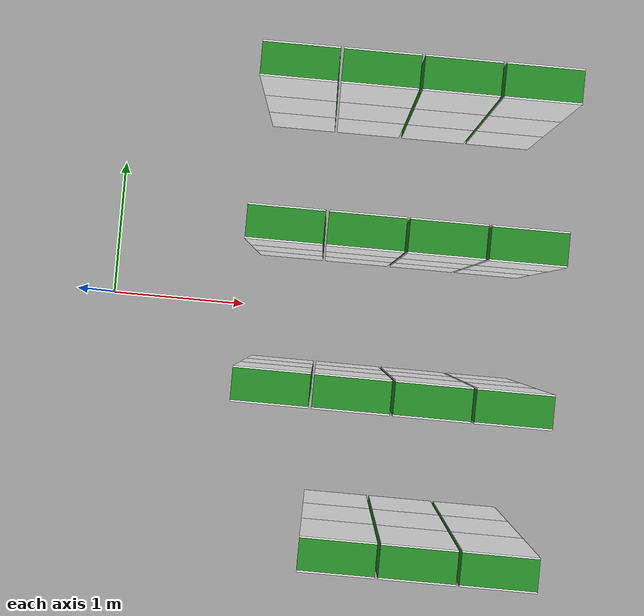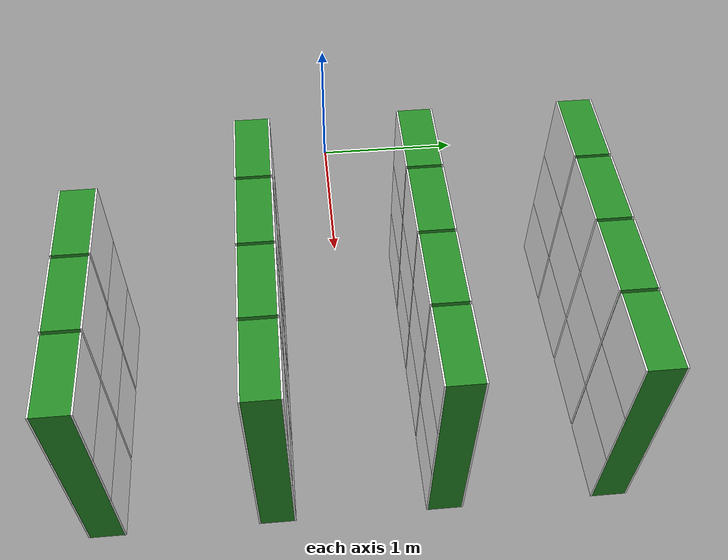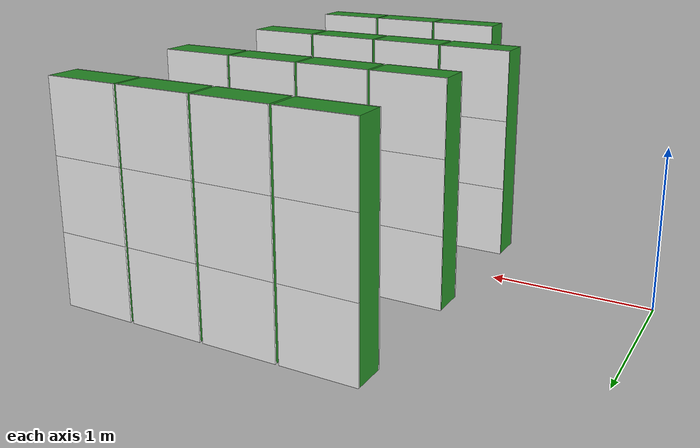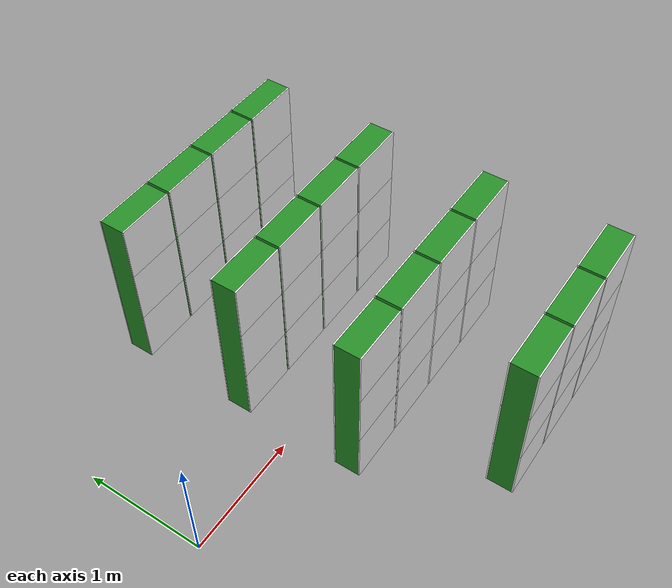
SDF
<sdf version="1.6">
 <world name="greenhouse_world">
  <model name="tomato_r0_p2">
   <static>true</static>
   <pose>1.840 -1.500 0 0 0 0</pose>
   <link name="link">
    <collision name="foliage_col">
     <pose>0 0 0.700 0 0 0</pose>
     <geometry><box><size>0.480 0.200 1.400</size></box></geometry>
    </collision>
    <visual name="foliage_core">
     <pose>0 0 0.700 0 0 0</pose>
     <geometry><box><size>0.480 0.200 1.400</size></box></geometry>
     <material><ambient>0.1 0.4 0.1 1</ambient><diffuse>0.15 0.55 0.15 1</diffuse></material>
    </visual>
    <visual name="foliage_panel_py_0">
     <pose>0 0.105 0.233 0 0 0</pose>
     <geometry><box><size>0.480 0.010 0.467</size></box></geometry>
     <material>
      <diffuse>1 1 1 1</diffuse>
      <specular>0 0 0 1</specular>
      <pbr>
       <metal>
        <albedo_map>../media/materials/textures/img17.jpg</albedo_map>
        <metalness>0.0</metalness>
        <roughness>1.0</roughness>
       </metal>
      </pbr>
     </material>
    </visual>
    <visual name="foliage_panel_py_1">
     <pose>0 0.105 0.700 0 0 0</pose>
     <geometry><box><size>0.480 0.010 0.467</size></box></geometry>
     <material>
      <diffuse>1 1 1 1</diffuse>
      <specular>0 0 0 1</specular>
      <pbr>
       <metal>
        <albedo_map>../media/materials/textures/img05.jpg</albedo_map>
        <metalness>0.0</metalness>
        <roughness>1.0</roughness>
       </metal>
      </pbr>
     </material>
    </visual>
    <visual name="foliage_panel_py_2">
     <pose>0 0.105 1.167 0 0 0</pose>
     <geometry><box><size>0.480 0.010 0.467</size></box></geometry>
     <material>
      <diffuse>1 1 1 1</diffuse>
      <specular>0 0 0 1</specular>
      <pbr>
       <metal>
        <albedo_map>../media/materials/textures/img10.jpg</albedo_map>
        <metalness>0.0</metalness>
        <roughness>1.0</roughness>
       </metal>
      </pbr>
     </material>
    </visual>
    <visual name="foliage_panel_ny_0">
     <pose>0 -0.105 0.233 0 3.14159 0</pose>
     <geometry><box><size>0.480 0.010 0.467</size></box></geometry>
     <material>
      <diffuse>1 1 1 1</diffuse>
      <specular>0 0 0 1</specular>
      <pbr>
       <metal>
        <albedo_map>../media/materials/textures/img05.jpg</albedo_map>
        <metalness>0.0</metalness>
        <roughness>1.0</roughness>
       </metal>
      </pbr>
     </material>
    </visual>
    <visual name="foliage_panel_ny_1">
     <pose>0 -0.105 0.700 0 3.14159 0</pose>
     <geometry><box><size>0.480 0.010 0.467</size></box></geometry>
     <material>
      <diffuse>1 1 1 1</diffuse>
      <specular>0 0 0 1</specular>
      <pbr>
       <metal>
        <albedo_map>../media/materials/textures/img04.jpg</albedo_map>
        <metalness>0.0</metalness>
        <roughness>1.0</roughness>
       </metal>
      </pbr>
     </material>
    </visual>
    <visual name="foliage_panel_ny_2">
     <pose>0 -0.105 1.167 0 3.14159 0</pose>
     <geometry><box><size>0.480 0.010 0.467</size></box></geometry>
     <material>
      <diffuse>1 1 1 1</diffuse>
      <specular>0 0 0 1</specular>
      <pbr>
       <metal>
        <albedo_map>../media/materials/textures/img20.jpg</albedo_map>
        <metalness>0.0</metalness>
        <roughness>1.0</roughness>
       </metal>
      </pbr>
     </material>
    </visual>
   </link>
  </model>
  <model name="tomato_r0_p3">
   <static>true</static>
   <pose>2.340 -1.500 0 0 0 0</pose>
   <link name="link">
    <collision name="foliage_col">
     <pose>0 0 0.700 0 0 0</pose>
     <geometry><box><size>0.480 0.200 1.400</size></box></geometry>
    </collision>
    <visual name="foliage_core">
     <pose>0 0 0.700 0 0 0</pose>
     <geometry><box><size>0.480 0.200 1.400</size></box></geometry>
     <material><ambient>0.1 0.4 0.1 1</ambient><diffuse>0.15 0.55 0.15 1</diffuse></material>
    </visual>
    <visual name="foliage_panel_py_0">
     <pose>0 0.105 0.233 0 0 0</pose>
     <geometry><box><size>0.480 0.010 0.467</size></box></geometry>
     <material>
      <diffuse>1 1 1 1</diffuse>
      <specular>0 0 0 1</specular>
      <pbr>
       <metal>
        <albedo_map>../media/materials/textures/img09.jpg</albedo_map>
        <metalness>0.0</metalness>
        <roughness>1.0</roughness>
       </metal>
      </pbr>
     </material>
    </visual>
    <visual name="foliage_panel_py_1">
     <pose>0 0.105 0.700 0 0 0</pose>
     <geometry><box><size>0.480 0.010 0.467</size></box></geometry>
     <material>
      <diffuse>1 1 1 1</diffuse>
      <specular>0 0 0 1</specular>
      <pbr>
       <metal>
        <albedo_map>../media/materials/textures/img18.jpg</albedo_map>
        <metalness>0.0</metalness>
        <roughness>1.0</roughness>
       </metal>
      </pbr>
     </material>
    </visual>
    <visual name="foliage_panel_py_2">
     <pose>0 0.105 1.167 0 0 0</pose>
     <geometry><box><size>0.480 0.010 0.467</size></box></geometry>
     <material>
      <diffuse>1 1 1 1</diffuse>
      <specular>0 0 0 1</specular>
      <pbr>
       <metal>
        <albedo_map>../media/materials/textures/img23.jpg</albedo_map>
        <metalness>0.0</metalness>
        <roughness>1.0</roughness>
       </metal>
      </pbr>
     </material>
    </visual>
    <visual name="foliage_panel_ny_0">
     <pose>0 -0.105 0.233 0 3.14159 0</pose>
     <geometry><box><size>0.480 0.010 0.467</size></box></geometry>
     <material>
      <diffuse>1 1 1 1</diffuse>
      <specular>0 0 0 1</specular>
      <pbr>
       <metal>
        <albedo_map>../media/materials/textures/img20.jpg</albedo_map>
        <metalness>0.0</metalness>
        <roughness>1.0</roughness>
       </metal>
      </pbr>
     </material>
    </visual>
    <visual name="foliage_panel_ny_1">
     <pose>0 -0.105 0.700 0 3.14159 0</pose>
     <geometry><box><size>0.480 0.010 0.467</size></box></geometry>
     <material>
      <diffuse>1 1 1 1</diffuse>
      <specular>0 0 0 1</specular>
      <pbr>
       <metal>
        <albedo_map>../media/materials/textures/img05.jpg</albedo_map>
        <metalness>0.0</metalness>
        <roughness>1.0</roughness>
       </metal>
      </pbr>
     </material>
    </visual>
    <visual name="foliage_panel_ny_2">
     <pose>0 -0.105 1.167 0 3.14159 0</pose>
     <geometry><box><size>0.480 0.010 0.467</size></box></geometry>
     <material>
      <diffuse>1 1 1 1</diffuse>
      <specular>0 0 0 1</specular>
      <pbr>
       <metal>
        <albedo_map>../media/materials/textures/img10.jpg</albedo_map>
        <metalness>0.0</metalness>
        <roughness>1.0</roughness>
       </metal>
      </pbr>
     </material>
    </visual>
   </link>
  </model>
  <model name="tomato_r0_p4">
   <static>true</static>
   <pose>2.840 -1.500 0 0 0 0</pose>
   <link name="link">
    <collision name="foliage_col">
     <pose>0 0 0.700 0 0 0</pose>
     <geometry><box><size>0.480 0.200 1.400</size></box></geometry>
    </collision>
    <visual name="foliage_core">
     <pose>0 0 0.700 0 0 0</pose>
     <geometry><box><size>0.480 0.200 1.400</size></box></geometry>
     <material><ambient>0.1 0.4 0.1 1</ambient><diffuse>0.15 0.55 0.15 1</diffuse></material>
    </visual>
    <visual name="foliage_panel_py_0">
     <pose>0 0.105 0.233 0 0 0</pose>
     <geometry><box><size>0.480 0.010 0.467</size></box></geometry>
     <material>
      <diffuse>1 1 1 1</diffuse>
      <specular>0 0 0 1</specular>
      <pbr>
       <metal>
        <albedo_map>../media/materials/textures/img04.jpg</albedo_map>
        <metalness>0.0</metalness>
        <roughness>1.0</roughness>
       </metal>
      </pbr>
     </material>
    </visual>
    <visual name="foliage_panel_py_1">
     <pose>0 0.105 0.700 0 0 0</pose>
     <geometry><box><size>0.480 0.010 0.467</size></box></geometry>
     <material>
      <diffuse>1 1 1 1</diffuse>
      <specular>0 0 0 1</specular>
      <pbr>
       <metal>
        <albedo_map>../media/materials/textures/img24.jpg</albedo_map>
        <metalness>0.0</metalness>
        <roughness>1.0</roughness>
       </metal>
      </pbr>
     </material>
    </visual>
    <visual name="foliage_panel_py_2">
     <pose>0 0.105 1.167 0 0 0</pose>
     <geometry><box><size>0.480 0.010 0.467</size></box></geometry>
     <material>
      <diffuse>1 1 1 1</diffuse>
      <specular>0 0 0 1</specular>
      <pbr>
       <metal>
        <albedo_map>../media/materials/textures/img03.jpg</albedo_map>
        <metalness>0.0</metalness>
        <roughness>1.0</roughness>
       </metal>
      </pbr>
     </material>
    </visual>
    <visual name="foliage_panel_ny_0">
     <pose>0 -0.105 0.233 0 3.14159 0</pose>
     <geometry><box><size>0.480 0.010 0.467</size></box></geometry>
     <material>
      <diffuse>1 1 1 1</diffuse>
      <specular>0 0 0 1</specular>
      <pbr>
       <metal>
        <albedo_map>../media/materials/textures/img22.jpg</albedo_map>
        <metalness>0.0</metalness>
        <roughness>1.0</roughness>
       </metal>
      </pbr>
     </material>
    </visual>
    <visual name="foliage_panel_ny_1">
     <pose>0 -0.105 0.700 0 3.14159 0</pose>
     <geometry><box><size>0.480 0.010 0.467</size></box></geometry>
     <material>
      <diffuse>1 1 1 1</diffuse>
      <specular>0 0 0 1</specular>
      <pbr>
       <metal>
        <albedo_map>../media/materials/textures/img11.jpg</albedo_map>
        <metalness>0.0</metalness>
        <roughness>1.0</roughness>
       </metal>
      </pbr>
     </material>
    </visual>
    <visual name="foliage_panel_ny_2">
     <pose>0 -0.105 1.167 0 3.14159 0</pose>
     <geometry><box><size>0.480 0.010 0.467</size></box></geometry>
     <material>
      <diffuse>1 1 1 1</diffuse>
      <specular>0 0 0 1</specular>
      <pbr>
       <metal>
        <albedo_map>../media/materials/textures/img16.jpg</albedo_map>
        <metalness>0.0</metalness>
        <roughness>1.0</roughness>
       </metal>
      </pbr>
     </material>
    </visual>
   </link>
  </model>
  <model name="tomato_r1_p1">
   <static>true</static>
   <pose>1.340 -0.500 0 0 0 0</pose>
   <link name="link">
    <collision name="foliage_col">
     <pose>0 0 0.700 0 0 0</pose>
     <geometry><box><size>0.480 0.200 1.400</size></box></geometry>
    </collision>
    <visual name="foliage_core">
     <pose>0 0 0.700 0 0 0</pose>
     <geometry><box><size>0.480 0.200 1.400</size></box></geometry>
     <material><ambient>0.1 0.4 0.1 1</ambient><diffuse>0.15 0.55 0.15 1</diffuse></material>
    </visual>
    <visual name="foliage_panel_py_0">
     <pose>0 0.105 0.233 0 0 0</pose>
     <geometry><box><size>0.480 0.010 0.467</size></box></geometry>
     <material>
      <diffuse>1 1 1 1</diffuse>
      <specular>0 0 0 1</specular>
      <pbr>
       <metal>
        <albedo_map>../media/materials/textures/img04.jpg</albedo_map>
        <metalness>0.0</metalness>
        <roughness>1.0</roughness>
       </metal>
      </pbr>
     </material>
    </visual>
    <visual name="foliage_panel_py_1">
     <pose>0 0.105 0.700 0 0 0</pose>
     <geometry><box><size>0.480 0.010 0.467</size></box></geometry>
     <material>
      <diffuse>1 1 1 1</diffuse>
      <specular>0 0 0 1</specular>
      <pbr>
       <metal>
        <albedo_map>../media/materials/textures/img18.jpg</albedo_map>
        <metalness>0.0</metalness>
        <roughness>1.0</roughness>
       </metal>
      </pbr>
     </material>
    </visual>
    <visual name="foliage_panel_py_2">
     <pose>0 0.105 1.167 0 0 0</pose>
     <geometry><box><size>0.480 0.010 0.467</size></box></geometry>
     <material>
      <diffuse>1 1 1 1</diffuse>
      <specular>0 0 0 1</specular>
      <pbr>
       <metal>
        <albedo_map>../media/materials/textures/img11.jpg</albedo_map>
        <metalness>0.0</metalness>
        <roughness>1.0</roughness>
       </metal>
      </pbr>
     </material>
    </visual>
    <visual name="foliage_panel_ny_0">
     <pose>0 -0.105 0.233 0 3.14159 0</pose>
     <geometry><box><size>0.480 0.010 0.467</size></box></geometry>
     <material>
      <diffuse>1 1 1 1</diffuse>
      <specular>0 0 0 1</specular>
      <pbr>
       <metal>
        <albedo_map>../media/materials/textures/img18.jpg</albedo_map>
        <metalness>0.0</metalness>
        <roughness>1.0</roughness>
       </metal>
      </pbr>
     </material>
    </visual>
    <visual name="foliage_panel_ny_1">
     <pose>0 -0.105 0.700 0 3.14159 0</pose>
     <geometry><box><size>0.480 0.010 0.467</size></box></geometry>
     <material>
      <diffuse>1 1 1 1</diffuse>
      <specular>0 0 0 1</specular>
      <pbr>
       <metal>
        <albedo_map>../media/materials/textures/img07.jpg</albedo_map>
        <metalness>0.0</metalness>
        <roughness>1.0</roughness>
       </metal>
      </pbr>
     </material>
    </visual>
    <visual name="foliage_panel_ny_2">
     <pose>0 -0.105 1.167 0 3.14159 0</pose>
     <geometry><box><size>0.480 0.010 0.467</size></box></geometry>
     <material>
      <diffuse>1 1 1 1</diffuse>
      <specular>0 0 0 1</specular>
      <pbr>
       <metal>
        <albedo_map>../media/materials/textures/img20.jpg</albedo_map>
        <metalness>0.0</metalness>
        <roughness>1.0</roughness>
       </metal>
      </pbr>
     </material>
    </visual>
   </link>
  </model>
  <model name="tomato_r1_p2">
   <static>true</static>
   <pose>1.840 -0.500 0 0 0 0</pose>
   <link name="link">
    <collision name="foliage_col">
     <pose>0 0 0.700 0 0 0</pose>
     <geometry><box><size>0.480 0.200 1.400</size></box></geometry>
    </collision>
    <visual name="foliage_core">
     <pose>0 0 0.700 0 0 0</pose>
     <geometry><box><size>0.480 0.200 1.400</size></box></geometry>
     <material><ambient>0.1 0.4 0.1 1</ambient><diffuse>0.15 0.55 0.15 1</diffuse></material>
    </visual>
    <visual name="foliage_panel_py_0">
     <pose>0 0.105 0.233 0 0 0</pose>
     <geometry><box><size>0.480 0.010 0.467</size></box></geometry>
     <material>
      <diffuse>1 1 1 1</diffuse>
      <specular>0 0 0 1</specular>
      <pbr>
       <metal>
        <albedo_map>../media/materials/textures/img18.jpg</albedo_map>
        <metalness>0.0</metalness>
        <roughness>1.0</roughness>
       </metal>
      </pbr>
     </material>
    </visual>
    <visual name="foliage_panel_py_1">
     <pose>0 0.105 0.700 0 0 0</pose>
     <geometry><box><size>0.480 0.010 0.467</size></box></geometry>
     <material>
      <diffuse>1 1 1 1</diffuse>
      <specular>0 0 0 1</specular>
      <pbr>
       <metal>
        <albedo_map>../media/materials/textures/img19.jpg</albedo_map>
        <metalness>0.0</metalness>
        <roughness>1.0</roughness>
       </metal>
      </pbr>
     </material>
    </visual>
    <visual name="foliage_panel_py_2">
     <pose>0 0.105 1.167 0 0 0</pose>
     <geometry><box><size>0.480 0.010 0.467</size></box></geometry>
     <material>
      <diffuse>1 1 1 1</diffuse>
      <specular>0 0 0 1</specular>
      <pbr>
       <metal>
        <albedo_map>../media/materials/textures/img10.jpg</albedo_map>
        <metalness>0.0</metalness>
        <roughness>1.0</roughness>
       </metal>
      </pbr>
     </material>
    </visual>
    <visual name="foliage_panel_ny_0">
     <pose>0 -0.105 0.233 0 3.14159 0</pose>
     <geometry><box><size>0.480 0.010 0.467</size></box></geometry>
     <material>
      <diffuse>1 1 1 1</diffuse>
      <specular>0 0 0 1</specular>
      <pbr>
       <metal>
        <albedo_map>../media/materials/textures/img15.jpg</albedo_map>
        <metalness>0.0</metalness>
        <roughness>1.0</roughness>
       </metal>
      </pbr>
     </material>
    </visual>
    <visual name="foliage_panel_ny_1">
     <pose>0 -0.105 0.700 0 3.14159 0</pose>
     <geometry><box><size>0.480 0.010 0.467</size></box></geometry>
     <material>
      <diffuse>1 1 1 1</diffuse>
      <specular>0 0 0 1</specular>
      <pbr>
       <metal>
        <albedo_map>../media/materials/textures/img03.jpg</albedo_map>
        <metalness>0.0</metalness>
        <roughness>1.0</roughness>
       </metal>
      </pbr>
     </material>
    </visual>
    <visual name="foliage_panel_ny_2">
     <pose>0 -0.105 1.167 0 3.14159 0</pose>
     <geometry><box><size>0.480 0.010 0.467</size></box></geometry>
     <material>
      <diffuse>1 1 1 1</diffuse>
      <specular>0 0 0 1</specular>
      <pbr>
       <metal>
        <albedo_map>../media/materials/textures/img20.jpg</albedo_map>
        <metalness>0.0</metalness>
        <roughness>1.0</roughness>
       </metal>
      </pbr>
     </material>
    </visual>
   </link>
  </model>
  <model name="tomato_r1_p3">
   <static>true</static>
   <pose>2.340 -0.500 0 0 0 0</pose>
   <link name="link">
    <collision name="foliage_col">
     <pose>0 0 0.700 0 0 0</pose>
     <geometry><box><size>0.480 0.200 1.400</size></box></geometry>
    </collision>
    <visual name="foliage_core">
     <pose>0 0 0.700 0 0 0</pose>
     <geometry><box><size>0.480 0.200 1.400</size></box></geometry>
     <material><ambient>0.1 0.4 0.1 1</ambient><diffuse>0.15 0.55 0.15 1</diffuse></material>
    </visual>
    <visual name="foliage_panel_py_0">
     <pose>0 0.105 0.233 0 0 0</pose>
     <geometry><box><size>0.480 0.010 0.467</size></box></geometry>
     <material>
      <diffuse>1 1 1 1</diffuse>
      <specular>0 0 0 1</specular>
      <pbr>
       <metal>
        <albedo_map>../media/materials/textures/img13.jpg</albedo_map>
        <metalness>0.0</metalness>
        <roughness>1.0</roughness>
       </metal>
      </pbr>
     </material>
    </visual>
    <visual name="foliage_panel_py_1">
     <pose>0 0.105 0.700 0 0 0</pose>
     <geometry><box><size>0.480 0.010 0.467</size></box></geometry>
     <material>
      <diffuse>1 1 1 1</diffuse>
      <specular>0 0 0 1</specular>
      <pbr>
       <metal>
        <albedo_map>../media/materials/textures/img11.jpg</albedo_map>
        <metalness>0.0</metalness>
        <roughness>1.0</roughness>
       </metal>
      </pbr>
     </material>
    </visual>
    <visual name="foliage_panel_py_2">
     <pose>0 0.105 1.167 0 0 0</pose>
     <geometry><box><size>0.480 0.010 0.467</size></box></geometry>
     <material>
      <diffuse>1 1 1 1</diffuse>
      <specular>0 0 0 1</specular>
      <pbr>
       <metal>
        <albedo_map>../media/materials/textures/img19.jpg</albedo_map>
        <metalness>0.0</metalness>
        <roughness>1.0</roughness>
       </metal>
      </pbr>
     </material>
    </visual>
    <visual name="foliage_panel_ny_0">
     <pose>0 -0.105 0.233 0 3.14159 0</pose>
     <geometry><box><size>0.480 0.010 0.467</size></box></geometry>
     <material>
      <diffuse>1 1 1 1</diffuse>
      <specular>0 0 0 1</specular>
      <pbr>
       <metal>
        <albedo_map>../media/materials/textures/img08.jpg</albedo_map>
        <metalness>0.0</metalness>
        <roughness>1.0</roughness>
       </metal>
      </pbr>
     </material>
    </visual>
    <visual name="foliage_panel_ny_1">
     <pose>0 -0.105 0.700 0 3.14159 0</pose>
     <geometry><box><size>0.480 0.010 0.467</size></box></geometry>
     <material>
      <diffuse>1 1 1 1</diffuse>
      <specular>0 0 0 1</specular>
      <pbr>
       <metal>
        <albedo_map>../media/materials/textures/img10.jpg</albedo_map>
        <metalness>0.0</metalness>
        <roughness>1.0</roughness>
       </metal>
      </pbr>
     </material>
    </visual>
    <visual name="foliage_panel_ny_2">
     <pose>0 -0.105 1.167 0 3.14159 0</pose>
     <geometry><box><size>0.480 0.010 0.467</size></box></geometry>
     <material>
      <diffuse>1 1 1 1</diffuse>
      <specular>0 0 0 1</specular>
      <pbr>
       <metal>
        <albedo_map>../media/materials/textures/img06.jpg</albedo_map>
        <metalness>0.0</metalness>
        <roughness>1.0</roughness>
       </metal>
      </pbr>
     </material>
    </visual>
   </link>
  </model>
  <model name="tomato_r1_p4">
   <static>true</static>
   <pose>2.840 -0.500 0 0 0 0</pose>
   <link name="link">
    <collision name="foliage_col">
     <pose>0 0 0.700 0 0 0</pose>
     <geometry><box><size>0.480 0.200 1.400</size></box></geometry>
    </collision>
    <visual name="foliage_core">
     <pose>0 0 0.700 0 0 0</pose>
     <geometry><box><size>0.480 0.200 1.400</size></box></geometry>
     <material><ambient>0.1 0.4 0.1 1</ambient><diffuse>0.15 0.55 0.15 1</diffuse></material>
    </visual>
    <visual name="foliage_panel_py_0">
     <pose>0 0.105 0.233 0 0 0</pose>
     <geometry><box><size>0.480 0.010 0.467</size></box></geometry>
     <material>
      <diffuse>1 1 1 1</diffuse>
      <specular>0 0 0 1</specular>
      <pbr>
       <metal>
        <albedo_map>../media/materials/textures/img07.jpg</albedo_map>
        <metalness>0.0</metalness>
        <roughness>1.0</roughness>
       </metal>
      </pbr>
     </material>
    </visual>
    <visual name="foliage_panel_py_1">
     <pose>0 0.105 0.700 0 0 0</pose>
     <geometry><box><size>0.480 0.010 0.467</size></box></geometry>
     <material>
      <diffuse>1 1 1 1</diffuse>
      <specular>0 0 0 1</specular>
      <pbr>
       <metal>
        <albedo_map>../media/materials/textures/img06.jpg</albedo_map>
        <metalness>0.0</metalness>
        <roughness>1.0</roughness>
       </metal>
      </pbr>
     </material>
    </visual>
    <visual name="foliage_panel_py_2">
     <pose>0 0.105 1.167 0 0 0</pose>
     <geometry><box><size>0.480 0.010 0.467</size></box></geometry>
     <material>
      <diffuse>1 1 1 1</diffuse>
      <specular>0 0 0 1</specular>
      <pbr>
       <metal>
        <albedo_map>../media/materials/textures/img02.jpg</albedo_map>
        <metalness>0.0</metalness>
        <roughness>1.0</roughness>
       </metal>
      </pbr>
     </material>
    </visual>
    <visual name="foliage_panel_ny_0">
     <pose>0 -0.105 0.233 0 3.14159 0</pose>
     <geometry><box><size>0.480 0.010 0.467</size></box></geometry>
     <material>
      <diffuse>1 1 1 1</diffuse>
      <specular>0 0 0 1</specular>
      <pbr>
       <metal>
        <albedo_map>../media/materials/textures/img20.jpg</albedo_map>
        <metalness>0.0</metalness>
        <roughness>1.0</roughness>
       </metal>
      </pbr>
     </material>
    </visual>
    <visual name="foliage_panel_ny_1">
     <pose>0 -0.105 0.700 0 3.14159 0</pose>
     <geometry><box><size>0.480 0.010 0.467</size></box></geometry>
     <material>
      <diffuse>1 1 1 1</diffuse>
      <specular>0 0 0 1</specular>
      <pbr>
       <metal>
        <albedo_map>../media/materials/textures/img22.jpg</albedo_map>
        <metalness>0.0</metalness>
        <roughness>1.0</roughness>
       </metal>
      </pbr>
     </material>
    </visual>
    <visual name="foliage_panel_ny_2">
     <pose>0 -0.105 1.167 0 3.14159 0</pose>
     <geometry><box><size>0.480 0.010 0.467</size></box></geometry>
     <material>
      <diffuse>1 1 1 1</diffuse>
      <specular>0 0 0 1</specular>
      <pbr>
       <metal>
        <albedo_map>../media/materials/textures/img09.jpg</albedo_map>
        <metalness>0.0</metalness>
        <roughness>1.0</roughness>
       </metal>
      </pbr>
     </material>
    </visual>
   </link>
  </model>
  <model name="tomato_r2_p1">
   <static>true</static>
   <pose>1.340 0.500 0 0 0 0</pose>
   <link name="link">
    <collision name="foliage_col">
     <pose>0 0 0.700 0 0 0</pose>
     <geometry><box><size>0.480 0.200 1.400</size></box></geometry>
    </collision>
    <visual name="foliage_core">
     <pose>0 0 0.700 0 0 0</pose>
     <geometry><box><size>0.480 0.200 1.400</size></box></geometry>
     <material><ambient>0.1 0.4 0.1 1</ambient><diffuse>0.15 0.55 0.15 1</diffuse></material>
    </visual>
    <visual name="foliage_panel_py_0">
     <pose>0 0.105 0.233 0 0 0</pose>
     <geometry><box><size>0.480 0.010 0.467</size></box></geometry>
     <material>
      <diffuse>1 1 1 1</diffuse>
      <specular>0 0 0 1</specular>
      <pbr>
       <metal>
        <albedo_map>../media/materials/textures/img14.jpg</albedo_map>
        <metalness>0.0</metalness>
        <roughness>1.0</roughness>
       </metal>
      </pbr>
     </material>
    </visual>
    <visual name="foliage_panel_py_1">
     <pose>0 0.105 0.700 0 0 0</pose>
     <geometry><box><size>0.480 0.010 0.467</size></box></geometry>
     <material>
      <diffuse>1 1 1 1</diffuse>
      <specular>0 0 0 1</specular>
      <pbr>
       <metal>
        <albedo_map>../media/materials/textures/img02.jpg</albedo_map>
        <metalness>0.0</metalness>
        <roughness>1.0</roughness>
       </metal>
      </pbr>
     </material>
    </visual>
    <visual name="foliage_panel_py_2">
     <pose>0 0.105 1.167 0 0 0</pose>
     <geometry><box><size>0.480 0.010 0.467</size></box></geometry>
     <material>
      <diffuse>1 1 1 1</diffuse>
      <specular>0 0 0 1</specular>
      <pbr>
       <metal>
        <albedo_map>../media/materials/textures/img04.jpg</albedo_map>
        <metalness>0.0</metalness>
        <roughness>1.0</roughness>
       </metal>
      </pbr>
     </material>
    </visual>
    <visual name="foliage_panel_ny_0">
     <pose>0 -0.105 0.233 0 3.14159 0</pose>
     <geometry><box><size>0.480 0.010 0.467</size></box></geometry>
     <material>
      <diffuse>1 1 1 1</diffuse>
      <specular>0 0 0 1</specular>
      <pbr>
       <metal>
        <albedo_map>../media/materials/textures/img05.jpg</albedo_map>
        <metalness>0.0</metalness>
        <roughness>1.0</roughness>
       </metal>
      </pbr>
     </material>
    </visual>
    <visual name="foliage_panel_ny_1">
     <pose>0 -0.105 0.700 0 3.14159 0</pose>
     <geometry><box><size>0.480 0.010 0.467</size></box></geometry>
     <material>
      <diffuse>1 1 1 1</diffuse>
      <specular>0 0 0 1</specular>
      <pbr>
       <metal>
        <albedo_map>../media/materials/textures/img23.jpg</albedo_map>
        <metalness>0.0</metalness>
        <roughness>1.0</roughness>
       </metal>
      </pbr>
     </material>
    </visual>
    <visual name="foliage_panel_ny_2">
     <pose>0 -0.105 1.167 0 3.14159 0</pose>
     <geometry><box><size>0.480 0.010 0.467</size></box></geometry>
     <material>
      <diffuse>1 1 1 1</diffuse>
      <specular>0 0 0 1</specular>
      <pbr>
       <metal>
        <albedo_map>../media/materials/textures/img08.jpg</albedo_map>
        <metalness>0.0</metalness>
        <roughness>1.0</roughness>
       </metal>
      </pbr>
     </material>
    </visual>
   </link>
  </model>
  <model name="tomato_r2_p2">
   <static>true</static>
   <pose>1.840 0.500 0 0 0 0</pose>
   <link name="link">
    <collision name="foliage_col">
     <pose>0 0 0.700 0 0 0</pose>
     <geometry><box><size>0.480 0.200 1.400</size></box></geometry>
    </collision>
    <visual name="foliage_core">
     <pose>0 0 0.700 0 0 0</pose>
     <geometry><box><size>0.480 0.200 1.400</size></box></geometry>
     <material><ambient>0.1 0.4 0.1 1</ambient><diffuse>0.15 0.55 0.15 1</diffuse></material>
    </visual>
    <visual name="foliage_panel_py_0">
     <pose>0 0.105 0.233 0 0 0</pose>
     <geometry><box><size>0.480 0.010 0.467</size></box></geometry>
     <material>
      <diffuse>1 1 1 1</diffuse>
      <specular>0 0 0 1</specular>
      <pbr>
       <metal>
        <albedo_map>../media/materials/textures/img02.jpg</albedo_map>
        <metalness>0.0</metalness>
        <roughness>1.0</roughness>
       </metal>
      </pbr>
     </material>
    </visual>
    <visual name="foliage_panel_py_1">
     <pose>0 0.105 0.700 0 0 0</pose>
     <geometry><box><size>0.480 0.010 0.467</size></box></geometry>
     <material>
      <diffuse>1 1 1 1</diffuse>
      <specular>0 0 0 1</specular>
      <pbr>
       <metal>
        <albedo_map>../media/materials/textures/img19.jpg</albedo_map>
        <metalness>0.0</metalness>
        <roughness>1.0</roughness>
       </metal>
      </pbr>
     </material>
    </visual>
    <visual name="foliage_panel_py_2">
     <pose>0 0.105 1.167 0 0 0</pose>
     <geometry><box><size>0.480 0.010 0.467</size></box></geometry>
     <material>
      <diffuse>1 1 1 1</diffuse>
      <specular>0 0 0 1</specular>
      <pbr>
       <metal>
        <albedo_map>../media/materials/textures/img21.jpg</albedo_map>
        <metalness>0.0</metalness>
        <roughness>1.0</roughness>
       </metal>
      </pbr>
     </material>
    </visual>
    <visual name="foliage_panel_ny_0">
     <pose>0 -0.105 0.233 0 3.14159 0</pose>
     <geometry><box><size>0.480 0.010 0.467</size></box></geometry>
     <material>
      <diffuse>1 1 1 1</diffuse>
      <specular>0 0 0 1</specular>
      <pbr>
       <metal>
        <albedo_map>../media/materials/textures/img18.jpg</albedo_map>
        <metalness>0.0</metalness>
        <roughness>1.0</roughness>
       </metal>
      </pbr>
     </material>
    </visual>
    <visual name="foliage_panel_ny_1">
     <pose>0 -0.105 0.700 0 3.14159 0</pose>
     <geometry><box><size>0.480 0.010 0.467</size></box></geometry>
     <material>
      <diffuse>1 1 1 1</diffuse>
      <specular>0 0 0 1</specular>
      <pbr>
       <metal>
        <albedo_map>../media/materials/textures/img20.jpg</albedo_map>
        <metalness>0.0</metalness>
        <roughness>1.0</roughness>
       </metal>
      </pbr>
     </material>
    </visual>
    <visual name="foliage_panel_ny_2">
     <pose>0 -0.105 1.167 0 3.14159 0</pose>
     <geometry><box><size>0.480 0.010 0.467</size></box></geometry>
     <material>
      <diffuse>1 1 1 1</diffuse>
      <specular>0 0 0 1</specular>
      <pbr>
       <metal>
        <albedo_map>../media/materials/textures/img22.jpg</albedo_map>
        <metalness>0.0</metalness>
        <roughness>1.0</roughness>
       </metal>
      </pbr>
     </material>
    </visual>
   </link>
  </model>
  <model name="tomato_r2_p3">
   <static>true</static>
   <pose>2.340 0.500 0 0 0 0</pose>
   <link name="link">
    <collision name="foliage_col">
     <pose>0 0 0.700 0 0 0</pose>
     <geometry><box><size>0.480 0.200 1.400</size></box></geometry>
    </collision>
    <visual name="foliage_core">
     <pose>0 0 0.700 0 0 0</pose>
     <geometry><box><size>0.480 0.200 1.400</size></box></geometry>
     <material><ambient>0.1 0.4 0.1 1</ambient><diffuse>0.15 0.55 0.15 1</diffuse></material>
    </visual>
    <visual name="foliage_panel_py_0">
     <pose>0 0.105 0.233 0 0 0</pose>
     <geometry><box><size>0.480 0.010 0.467</size></box></geometry>
     <material>
      <diffuse>1 1 1 1</diffuse>
      <specular>0 0 0 1</specular>
      <pbr>
       <metal>
        <albedo_map>../media/materials/textures/img03.jpg</albedo_map>
        <metalness>0.0</metalness>
        <roughness>1.0</roughness>
       </metal>
      </pbr>
     </material>
    </visual>
    <visual name="foliage_panel_py_1">
     <pose>0 0.105 0.700 0 0 0</pose>
     <geometry><box><size>0.480 0.010 0.467</size></box></geometry>
     <material>
      <diffuse>1 1 1 1</diffuse>
      <specular>0 0 0 1</specular>
      <pbr>
       <metal>
        <albedo_map>../media/materials/textures/img01.jpg</albedo_map>
        <metalness>0.0</metalness>
        <roughness>1.0</roughness>
       </metal>
      </pbr>
     </material>
    </visual>
    <visual name="foliage_panel_py_2">
     <pose>0 0.105 1.167 0 0 0</pose>
     <geometry><box><size>0.480 0.010 0.467</size></box></geometry>
     <material>
      <diffuse>1 1 1 1</diffuse>
      <specular>0 0 0 1</specular>
      <pbr>
       <metal>
        <albedo_map>../media/materials/textures/img04.jpg</albedo_map>
        <metalness>0.0</metalness>
        <roughness>1.0</roughness>
       </metal>
      </pbr>
     </material>
    </visual>
    <visual name="foliage_panel_ny_0">
     <pose>0 -0.105 0.233 0 3.14159 0</pose>
     <geometry><box><size>0.480 0.010 0.467</size></box></geometry>
     <material>
      <diffuse>1 1 1 1</diffuse>
      <specular>0 0 0 1</specular>
      <pbr>
       <metal>
        <albedo_map>../media/materials/textures/img21.jpg</albedo_map>
        <metalness>0.0</metalness>
        <roughness>1.0</roughness>
       </metal>
      </pbr>
     </material>
    </visual>
    <visual name="foliage_panel_ny_1">
     <pose>0 -0.105 0.700 0 3.14159 0</pose>
     <geometry><box><size>0.480 0.010 0.467</size></box></geometry>
     <material>
      <diffuse>1 1 1 1</diffuse>
      <specular>0 0 0 1</specular>
      <pbr>
       <metal>
        <albedo_map>../media/materials/textures/img07.jpg</albedo_map>
        <metalness>0.0</metalness>
        <roughness>1.0</roughness>
       </metal>
      </pbr>
     </material>
    </visual>
    <visual name="foliage_panel_ny_2">
     <pose>0 -0.105 1.167 0 3.14159 0</pose>
     <geometry><box><size>0.480 0.010 0.467</size></box></geometry>
     <material>
      <diffuse>1 1 1 1</diffuse>
      <specular>0 0 0 1</specular>
      <pbr>
       <metal>
        <albedo_map>../media/materials/textures/img20.jpg</albedo_map>
        <metalness>0.0</metalness>
        <roughness>1.0</roughness>
       </metal>
      </pbr>
     </material>
    </visual>
   </link>
  </model>
  <model name="tomato_r2_p4">
   <static>true</static>
   <pose>2.840 0.500 0 0 0 0</pose>
   <link name="link">
    <collision name="foliage_col">
     <pose>0 0 0.700 0 0 0</pose>
     <geometry><box><size>0.480 0.200 1.400</size></box></geometry>
    </collision>
    <visual name="foliage_core">
     <pose>0 0 0.700 0 0 0</pose>
     <geometry><box><size>0.480 0.200 1.400</size></box></geometry>
     <material><ambient>0.1 0.4 0.1 1</ambient><diffuse>0.15 0.55 0.15 1</diffuse></material>
    </visual>
    <visual name="foliage_panel_py_0">
     <pose>0 0.105 0.233 0 0 0</pose>
     <geometry><box><size>0.480 0.010 0.467</size></box></geometry>
     <material>
      <diffuse>1 1 1 1</diffuse>
      <specular>0 0 0 1</specular>
      <pbr>
       <metal>
        <albedo_map>../media/materials/textures/img19.jpg</albedo_map>
        <metalness>0.0</metalness>
        <roughness>1.0</roughness>
       </metal>
      </pbr>
     </material>
    </visual>
    <visual name="foliage_panel_py_1">
     <pose>0 0.105 0.700 0 0 0</pose>
     <geometry><box><size>0.480 0.010 0.467</size></box></geometry>
     <material>
      <diffuse>1 1 1 1</diffuse>
      <specular>0 0 0 1</specular>
      <pbr>
       <metal>
        <albedo_map>../media/materials/textures/img04.jpg</albedo_map>
        <metalness>0.0</metalness>
        <roughness>1.0</roughness>
       </metal>
      </pbr>
     </material>
    </visual>
    <visual name="foliage_panel_py_2">
     <pose>0 0.105 1.167 0 0 0</pose>
     <geometry><box><size>0.480 0.010 0.467</size></box></geometry>
     <material>
      <diffuse>1 1 1 1</diffuse>
      <specular>0 0 0 1</specular>
      <pbr>
       <metal>
        <albedo_map>../media/materials/textures/img13.jpg</albedo_map>
        <metalness>0.0</metalness>
        <roughness>1.0</roughness>
       </metal>
      </pbr>
     </material>
    </visual>
    <visual name="foliage_panel_ny_0">
     <pose>0 -0.105 0.233 0 3.14159 0</pose>
     <geometry><box><size>0.480 0.010 0.467</size></box></geometry>
     <material>
      <diffuse>1 1 1 1</diffuse>
      <specular>0 0 0 1</specular>
      <pbr>
       <metal>
        <albedo_map>../media/materials/textures/img03.jpg</albedo_map>
        <metalness>0.0</metalness>
        <roughness>1.0</roughness>
       </metal>
      </pbr>
     </material>
    </visual>
    <visual name="foliage_panel_ny_1">
     <pose>0 -0.105 0.700 0 3.14159 0</pose>
     <geometry><box><size>0.480 0.010 0.467</size></box></geometry>
     <material>
      <diffuse>1 1 1 1</diffuse>
      <specular>0 0 0 1</specular>
      <pbr>
       <metal>
        <albedo_map>../media/materials/textures/img12.jpg</albedo_map>
        <metalness>0.0</metalness>
        <roughness>1.0</roughness>
       </metal>
      </pbr>
     </material>
    </visual>
    <visual name="foliage_panel_ny_2">
     <pose>0 -0.105 1.167 0 3.14159 0</pose>
     <geometry><box><size>0.480 0.010 0.467</size></box></geometry>
     <material>
      <diffuse>1 1 1 1</diffuse>
      <specular>0 0 0 1</specular>
      <pbr>
       <metal>
        <albedo_map>../media/materials/textures/img04.jpg</albedo_map>
        <metalness>0.0</metalness>
        <roughness>1.0</roughness>
       </metal>
      </pbr>
     </material>
    </visual>
   </link>
  </model>
  <model name="tomato_r3_p1">
   <static>true</static>
   <pose>1.340 1.500 0 0 0 0</pose>
   <link name="link">
    <collision name="foliage_col">
     <pose>0 0 0.700 0 0 0</pose>
     <geometry><box><size>0.480 0.200 1.400</size></box></geometry>
    </collision>
    <visual name="foliage_core">
     <pose>0 0 0.700 0 0 0</pose>
     <geometry><box><size>0.480 0.200 1.400</size></box></geometry>
     <material><ambient>0.1 0.4 0.1 1</ambient><diffuse>0.15 0.55 0.15 1</diffuse></material>
    </visual>
    <visual name="foliage_panel_py_0">
     <pose>0 0.105 0.233 0 0 0</pose>
     <geometry><box><size>0.480 0.010 0.467</size></box></geometry>
     <material>
      <diffuse>1 1 1 1</diffuse>
      <specular>0 0 0 1</specular>
      <pbr>
       <metal>
        <albedo_map>../media/materials/textures/img11.jpg</albedo_map>
        <metalness>0.0</metalness>
        <roughness>1.0</roughness>
       </metal>
      </pbr>
     </material>
    </visual>
    <visual name="foliage_panel_py_1">
     <pose>0 0.105 0.700 0 0 0</pose>
     <geometry><box><size>0.480 0.010 0.467</size></box></geometry>
     <material>
      <diffuse>1 1 1 1</diffuse>
      <specular>0 0 0 1</specular>
      <pbr>
       <metal>
        <albedo_map>../media/materials/textures/img17.jpg</albedo_map>
        <metalness>0.0</metalness>
        <roughness>1.0</roughness>
       </metal>
      </pbr>
     </material>
    </visual>
    <visual name="foliage_panel_py_2">
     <pose>0 0.105 1.167 0 0 0</pose>
     <geometry><box><size>0.480 0.010 0.467</size></box></geometry>
     <material>
      <diffuse>1 1 1 1</diffuse>
      <specular>0 0 0 1</specular>
      <pbr>
       <metal>
        <albedo_map>../media/materials/textures/img09.jpg</albedo_map>
        <metalness>0.0</metalness>
        <roughness>1.0</roughness>
       </metal>
      </pbr>
     </material>
    </visual>
    <visual name="foliage_panel_ny_0">
     <pose>0 -0.105 0.233 0 3.14159 0</pose>
     <geometry><box><size>0.480 0.010 0.467</size></box></geometry>
     <material>
      <diffuse>1 1 1 1</diffuse>
      <specular>0 0 0 1</specular>
      <pbr>
       <metal>
        <albedo_map>../media/materials/textures/img04.jpg</albedo_map>
        <metalness>0.0</metalness>
        <roughness>1.0</roughness>
       </metal>
      </pbr>
     </material>
    </visual>
    <visual name="foliage_panel_ny_1">
     <pose>0 -0.105 0.700 0 3.14159 0</pose>
     <geometry><box><size>0.480 0.010 0.467</size></box></geometry>
     <material>
      <diffuse>1 1 1 1</diffuse>
      <specular>0 0 0 1</specular>
      <pbr>
       <metal>
        <albedo_map>../media/materials/textures/img20.jpg</albedo_map>
        <metalness>0.0</metalness>
        <roughness>1.0</roughness>
       </metal>
      </pbr>
     </material>
    </visual>
    <visual name="foliage_panel_ny_2">
     <pose>0 -0.105 1.167 0 3.14159 0</pose>
     <geometry><box><size>0.480 0.010 0.467</size></box></geometry>
     <material>
      <diffuse>1 1 1 1</diffuse>
      <specular>0 0 0 1</specular>
      <pbr>
       <metal>
        <albedo_map>../media/materials/textures/img15.jpg</albedo_map>
        <metalness>0.0</metalness>
        <roughness>1.0</roughness>
       </metal>
      </pbr>
     </material>
    </visual>
   </link>
  </model>
  <model name="tomato_r3_p2">
   <static>true</static>
   <pose>1.840 1.500 0 0 0 0</pose>
   <link name="link">
    <collision name="foliage_col">
     <pose>0 0 0.700 0 0 0</pose>
     <geometry><box><size>0.480 0.200 1.400</size></box></geometry>
    </collision>
    <visual name="foliage_core">
     <pose>0 0 0.700 0 0 0</pose>
     <geometry><box><size>0.480 0.200 1.400</size></box></geometry>
     <material><ambient>0.1 0.4 0.1 1</ambient><diffuse>0.15 0.55 0.15 1</diffuse></material>
    </visual>
    <visual name="foliage_panel_py_0">
     <pose>0 0.105 0.233 0 0 0</pose>
     <geometry><box><size>0.480 0.010 0.467</size></box></geometry>
     <material>
      <diffuse>1 1 1 1</diffuse>
      <specular>0 0 0 1</specular>
      <pbr>
       <metal>
        <albedo_map>../media/materials/textures/img22.jpg</albedo_map>
        <metalness>0.0</metalness>
        <roughness>1.0</roughness>
       </metal>
      </pbr>
     </material>
    </visual>
    <visual name="foliage_panel_py_1">
     <pose>0 0.105 0.700 0 0 0</pose>
     <geometry><box><size>0.480 0.010 0.467</size></box></geometry>
     <material>
      <diffuse>1 1 1 1</diffuse>
      <specular>0 0 0 1</specular>
      <pbr>
       <metal>
        <albedo_map>../media/materials/textures/img06.jpg</albedo_map>
        <metalness>0.0</metalness>
        <roughness>1.0</roughness>
       </metal>
      </pbr>
     </material>
    </visual>
    <visual name="foliage_panel_py_2">
     <pose>0 0.105 1.167 0 0 0</pose>
     <geometry><box><size>0.480 0.010 0.467</size></box></geometry>
     <material>
      <diffuse>1 1 1 1</diffuse>
      <specular>0 0 0 1</specular>
      <pbr>
       <metal>
        <albedo_map>../media/materials/textures/img01.jpg</albedo_map>
        <metalness>0.0</metalness>
        <roughness>1.0</roughness>
       </metal>
      </pbr>
     </material>
    </visual>
    <visual name="foliage_panel_ny_0">
     <pose>0 -0.105 0.233 0 3.14159 0</pose>
     <geometry><box><size>0.480 0.010 0.467</size></box></geometry>
     <material>
      <diffuse>1 1 1 1</diffuse>
      <specular>0 0 0 1</specular>
      <pbr>
       <metal>
        <albedo_map>../media/materials/textures/img16.jpg</albedo_map>
        <metalness>0.0</metalness>
        <roughness>1.0</roughness>
       </metal>
      </pbr>
     </material>
    </visual>
    <visual name="foliage_panel_ny_1">
     <pose>0 -0.105 0.700 0 3.14159 0</pose>
     <geometry><box><size>0.480 0.010 0.467</size></box></geometry>
     <material>
      <diffuse>1 1 1 1</diffuse>
      <specular>0 0 0 1</specular>
      <pbr>
       <metal>
        <albedo_map>../media/materials/textures/img22.jpg</albedo_map>
        <metalness>0.0</metalness>
        <roughness>1.0</roughness>
       </metal>
      </pbr>
     </material>
    </visual>
    <visual name="foliage_panel_ny_2">
     <pose>0 -0.105 1.167 0 3.14159 0</pose>
     <geometry><box><size>0.480 0.010 0.467</size></box></geometry>
     <material>
      <diffuse>1 1 1 1</diffuse>
      <specular>0 0 0 1</specular>
      <pbr>
       <metal>
        <albedo_map>../media/materials/textures/img14.jpg</albedo_map>
        <metalness>0.0</metalness>
        <roughness>1.0</roughness>
       </metal>
      </pbr>
     </material>
    </visual>
   </link>
  </model>
  <model name="tomato_r3_p3">
   <static>true</static>
   <pose>2.340 1.500 0 0 0 0</pose>
   <link name="link">
    <collision name="foliage_col">
     <pose>0 0 0.700 0 0 0</pose>
     <geometry><box><size>0.480 0.200 1.400</size></box></geometry>
    </collision>
    <visual name="foliage_core">
     <pose>0 0 0.700 0 0 0</pose>
     <geometry><box><size>0.480 0.200 1.400</size></box></geometry>
     <material><ambient>0.1 0.4 0.1 1</ambient><diffuse>0.15 0.55 0.15 1</diffuse></material>
    </visual>
    <visual name="foliage_panel_py_0">
     <pose>0 0.105 0.233 0 0 0</pose>
     <geometry><box><size>0.480 0.010 0.467</size></box></geometry>
     <material>
      <diffuse>1 1 1 1</diffuse>
      <specular>0 0 0 1</specular>
      <pbr>
       <metal>
        <albedo_map>../media/materials/textures/img19.jpg</albedo_map>
        <metalness>0.0</metalness>
        <roughness>1.0</roughness>
       </metal>
      </pbr>
     </material>
    </visual>
    <visual name="foliage_panel_py_1">
     <pose>0 0.105 0.700 0 0 0</pose>
     <geometry><box><size>0.480 0.010 0.467</size></box></geometry>
     <material>
      <diffuse>1 1 1 1</diffuse>
      <specular>0 0 0 1</specular>
      <pbr>
       <metal>
        <albedo_map>../media/materials/textures/img17.jpg</albedo_map>
        <metalness>0.0</metalness>
        <roughness>1.0</roughness>
       </metal>
      </pbr>
     </material>
    </visual>
    <visual name="foliage_panel_py_2">
     <pose>0 0.105 1.167 0 0 0</pose>
     <geometry><box><size>0.480 0.010 0.467</size></box></geometry>
     <material>
      <diffuse>1 1 1 1</diffuse>
      <specular>0 0 0 1</specular>
      <pbr>
       <metal>
        <albedo_map>../media/materials/textures/img10.jpg</albedo_map>
        <metalness>0.0</metalness>
        <roughness>1.0</roughness>
       </metal>
      </pbr>
     </material>
    </visual>
    <visual name="foliage_panel_ny_0">
     <pose>0 -0.105 0.233 0 3.14159 0</pose>
     <geometry><box><size>0.480 0.010 0.467</size></box></geometry>
     <material>
      <diffuse>1 1 1 1</diffuse>
      <specular>0 0 0 1</specular>
      <pbr>
       <metal>
        <albedo_map>../media/materials/textures/img21.jpg</albedo_map>
        <metalness>0.0</metalness>
        <roughness>1.0</roughness>
       </metal>
      </pbr>
     </material>
    </visual>
    <visual name="foliage_panel_ny_1">
     <pose>0 -0.105 0.700 0 3.14159 0</pose>
     <geometry><box><size>0.480 0.010 0.467</size></box></geometry>
     <material>
      <diffuse>1 1 1 1</diffuse>
      <specular>0 0 0 1</specular>
      <pbr>
       <metal>
        <albedo_map>../media/materials/textures/img12.jpg</albedo_map>
        <metalness>0.0</metalness>
        <roughness>1.0</roughness>
       </metal>
      </pbr>
     </material>
    </visual>
    <visual name="foliage_panel_ny_2">
     <pose>0 -0.105 1.167 0 3.14159 0</pose>
     <geometry><box><size>0.480 0.010 0.467</size></box></geometry>
     <material>
      <diffuse>1 1 1 1</diffuse>
      <specular>0 0 0 1</specular>
      <pbr>
       <metal>
        <albedo_map>../media/materials/textures/img13.jpg</albedo_map>
        <metalness>0.0</metalness>
        <roughness>1.0</roughness>
       </metal>
      </pbr>
     </material>
    </visual>
   </link>
  </model>
  <model name="tomato_r3_p4">
   <static>true</static>
   <pose>2.840 1.500 0 0 0 0</pose>
   <link name="link">
    <collision name="foliage_col">
     <pose>0 0 0.700 0 0 0</pose>
     <geometry><box><size>0.480 0.200 1.400</size></box></geometry>
    </collision>
    <visual name="foliage_core">
     <pose>0 0 0.700 0 0 0</pose>
     <geometry><box><size>0.480 0.200 1.400</size></box></geometry>
     <material><ambient>0.1 0.4 0.1 1</ambient><diffuse>0.15 0.55 0.15 1</diffuse></material>
    </visual>
    <visual name="foliage_panel_py_0">
     <pose>0 0.105 0.233 0 0 0</pose>
     <geometry><box><size>0.480 0.010 0.467</size></box></geometry>
     <material>
      <diffuse>1 1 1 1</diffuse>
      <specular>0 0 0 1</specular>
      <pbr>
       <metal>
        <albedo_map>../media/materials/textures/img22.jpg</albedo_map>
        <metalness>0.0</metalness>
        <roughness>1.0</roughness>
       </metal>
      </pbr>
     </material>
    </visual>
    <visual name="foliage_panel_py_1">
     <pose>0 0.105 0.700 0 0 0</pose>
     <geometry><box><size>0.480 0.010 0.467</size></box></geometry>
     <material>
      <diffuse>1 1 1 1</diffuse>
      <specular>0 0 0 1</specular>
      <pbr>
       <metal>
        <albedo_map>../media/materials/textures/img09.jpg</albedo_map>
        <metalness>0.0</metalness>
        <roughness>1.0</roughness>
       </metal>
      </pbr>
     </material>
    </visual>
    <visual name="foliage_panel_py_2">
     <pose>0 0.105 1.167 0 0 0</pose>
     <geometry><box><size>0.480 0.010 0.467</size></box></geometry>
     <material>
      <diffuse>1 1 1 1</diffuse>
      <specular>0 0 0 1</specular>
      <pbr>
       <metal>
        <albedo_map>../media/materials/textures/img05.jpg</albedo_map>
        <metalness>0.0</metalness>
        <roughness>1.0</roughness>
       </metal>
      </pbr>
     </material>
    </visual>
    <visual name="foliage_panel_ny_0">
     <pose>0 -0.105 0.233 0 3.14159 0</pose>
     <geometry><box><size>0.480 0.010 0.467</size></box></geometry>
     <material>
      <diffuse>1 1 1 1</diffuse>
      <specular>0 0 0 1</specular>
      <pbr>
       <metal>
        <albedo_map>../media/materials/textures/img18.jpg</albedo_map>
        <metalness>0.0</metalness>
        <roughness>1.0</roughness>
       </metal>
      </pbr>
     </material>
    </visual>
    <visual name="foliage_panel_ny_1">
     <pose>0 -0.105 0.700 0 3.14159 0</pose>
     <geometry><box><size>0.480 0.010 0.467</size></box></geometry>
     <material>
      <diffuse>1 1 1 1</diffuse>
      <specular>0 0 0 1</specular>
      <pbr>
       <metal>
        <albedo_map>../media/materials/textures/img23.jpg</albedo_map>
        <metalness>0.0</metalness>
        <roughness>1.0</roughness>
       </metal>
      </pbr>
     </material>
    </visual>
    <visual name="foliage_panel_ny_2">
     <pose>0 -0.105 1.167 0 3.14159 0</pose>
     <geometry><box><size>0.480 0.010 0.467</size></box></geometry>
     <material>
      <diffuse>1 1 1 1</diffuse>
      <specular>0 0 0 1</specular>
      <pbr>
       <metal>
        <albedo_map>../media/materials/textures/img01.jpg</albedo_map>
        <metalness>0.0</metalness>
        <roughness>1.0</roughness>
       </metal>
      </pbr>
     </material>
    </visual>
   </link>
  </model>
 </world>
</sdf>
